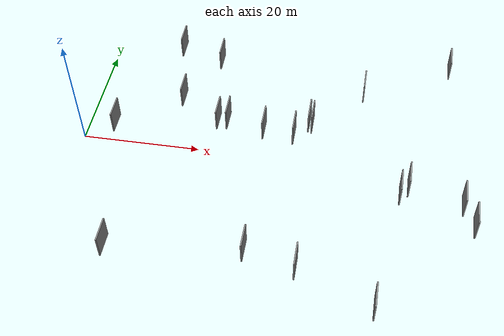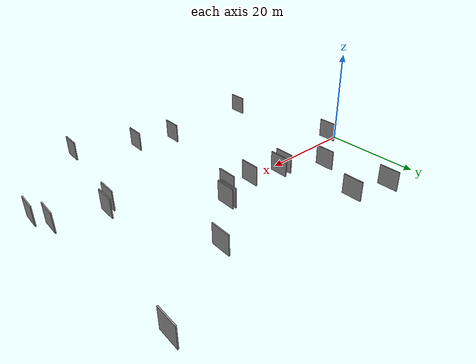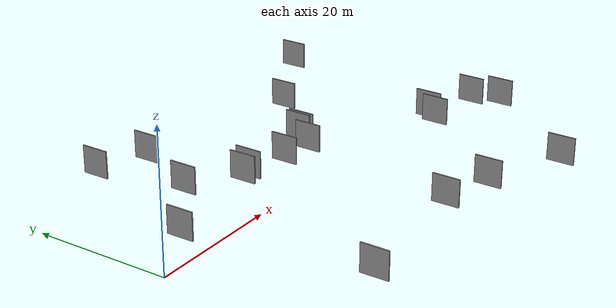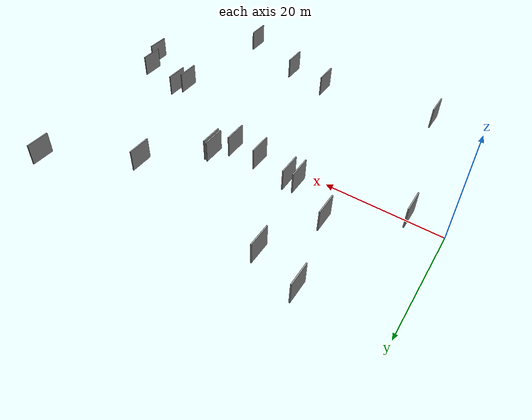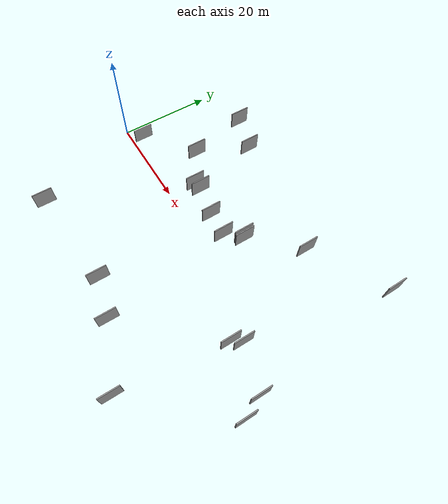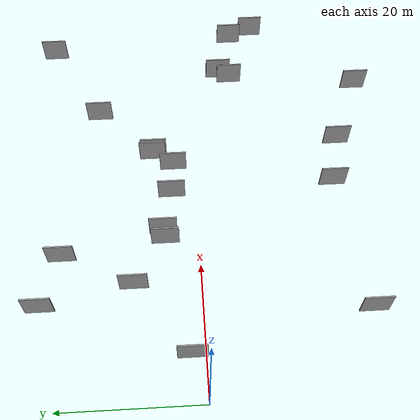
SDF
<sdf version="1.6">
 <world name="default">
  <scene>
   <sky><clouds><speed>12</speed></clouds></sky>
   <ambient>0.4 0.4 0.4 1</ambient>
   <background>0.7 0.7 0.7 1</background>
   <shadows>1</shadows>
  </scene>
  <gravity>0 0 -9.8066</gravity>
  <magnetic_field>6e-06 2.3e-05 -4.2e-05</magnetic_field>
  <physics default="0" name="default_physics" type="ode">
   <ode>
    <solver>
     <type>quick</type>
     <iters>10</iters>
     <sor>1.0</sor>
     <use_dynamic_moi_rescaling>0</use_dynamic_moi_rescaling>
    </solver>
    <constraints>
     <cfm>0</cfm>
     <erp>0.2</erp>
     <contact_max_correcting_vel>100</contact_max_correcting_vel>
     <contact_surface_layer>0.001</contact_surface_layer>
    </constraints>
   </ode>
   <max_step_size>0.004</max_step_size>
   <real_time_factor>1</real_time_factor>
   <real_time_update_rate>250</real_time_update_rate>
  </physics>
  <light name="sun" type="directional">
   <pose>0 0 10 0 0 0</pose>
   <diffuse>0.8 0.8 0.8 1</diffuse>
   <specular>0.2 0.2 0.2 1</specular>
   <attenuation>
    <range>1000</range>
    <constant>0.9</constant>
    <linear>0.01</linear>
    <quadratic>0.001</quadratic>
   </attenuation>
   <direction>-0.5 0.1 -0.9</direction>
  </light>
  <model name="grey_wall_1">
   <static>1</static>
   <pose>54.1508 -6.5935 2.5 0.000000 0.000000 1.570796</pose>
   <link name="link">
    <pose>0 0 2.00 0 0 0</pose>
    <collision name="collision"><geometry><box><size>4.00 0.2 4.00</size></box></geometry></collision>
    <visual name="visual">
     <cast_shadows>0</cast_shadows>
     <geometry><box><size>4.00 0.2 4.00</size></box></geometry>
     <material>
      <script>
       <uri>model://grey_wall/materials/scripts</uri>
       <uri>model://grey_wall/materials/textures</uri>
       <name>vrc/grey_wall</name>
      </script>
     </material>
    </visual>
   </link>
  </model>
  <model name="grey_wall_2">
   <static>1</static>
   <pose>35.8969 3.4555 2.5 0.000000 0.000000 1.570796</pose>
   <link name="link">
    <pose>0 0 2.00 0 0 0</pose>
    <collision name="collision"><geometry><box><size>4.00 0.2 4.00</size></box></geometry></collision>
    <visual name="visual">
     <cast_shadows>0</cast_shadows>
     <geometry><box><size>4.00 0.2 4.00</size></box></geometry>
     <material>
      <script>
       <uri>model://grey_wall/materials/scripts</uri>
       <uri>model://grey_wall/materials/textures</uri>
       <name>vrc/grey_wall</name>
      </script>
     </material>
    </visual>
   </link>
  </model>
  <model name="grey_wall_3">
   <static>1</static>
   <pose>10.6538 -22.9166 2.5 0.000000 0.000000 1.570796</pose>
   <link name="link">
    <pose>0 0 2.00 0 0 0</pose>
    <collision name="collision"><geometry><box><size>4.00 0.2 4.00</size></box></geometry></collision>
    <visual name="visual">
     <cast_shadows>0</cast_shadows>
     <geometry><box><size>4.00 0.2 4.00</size></box></geometry>
     <material>
      <script>
       <uri>model://grey_wall/materials/scripts</uri>
       <uri>model://grey_wall/materials/textures</uri>
       <name>vrc/grey_wall</name>
      </script>
     </material>
    </visual>
   </link>
  </model>
  <model name="grey_wall_4">
   <static>1</static>
   <pose>39.6951 -22.6798 2.5 0.000000 0.000000 1.570796</pose>
   <link name="link">
    <pose>0 0 2.00 0 0 0</pose>
    <collision name="collision"><geometry><box><size>4.00 0.2 4.00</size></box></geometry></collision>
    <visual name="visual">
     <cast_shadows>0</cast_shadows>
     <geometry><box><size>4.00 0.2 4.00</size></box></geometry>
     <material>
      <script>
       <uri>model://grey_wall/materials/scripts</uri>
       <uri>model://grey_wall/materials/textures</uri>
       <name>vrc/grey_wall</name>
      </script>
     </material>
    </visual>
   </link>
  </model>
  <model name="grey_wall_5">
   <static>1</static>
   <pose>12.8895 22.1530 2.5 0.000000 0.000000 1.570796</pose>
   <link name="link">
    <pose>0 0 2.00 0 0 0</pose>
    <collision name="collision"><geometry><box><size>4.00 0.2 4.00</size></box></geometry></collision>
    <visual name="visual">
     <cast_shadows>0</cast_shadows>
     <geometry><box><size>4.00 0.2 4.00</size></box></geometry>
     <material>
      <script>
       <uri>model://grey_wall/materials/scripts</uri>
       <uri>model://grey_wall/materials/textures</uri>
       <name>vrc/grey_wall</name>
      </script>
     </material>
    </visual>
   </link>
  </model>
  <model name="grey_wall_6">
   <static>1</static>
   <pose>20.5125 19.7068 2.5 0.000000 0.000000 1.570796</pose>
   <link name="link">
    <pose>0 0 2.00 0 0 0</pose>
    <collision name="collision"><geometry><box><size>4.00 0.2 4.00</size></box></geometry></collision>
    <visual name="visual">
     <cast_shadows>0</cast_shadows>
     <geometry><box><size>4.00 0.2 4.00</size></box></geometry>
     <material>
      <script>
       <uri>model://grey_wall/materials/scripts</uri>
       <uri>model://grey_wall/materials/textures</uri>
       <name>vrc/grey_wall</name>
      </script>
     </material>
    </visual>
   </link>
  </model>
  <model name="grey_wall_7">
   <static>1</static>
   <pose>5.5420 1.8438 2.5 0.000000 0.000000 1.570796</pose>
   <link name="link">
    <pose>0 0 2.00 0 0 0</pose>
    <collision name="collision"><geometry><box><size>4.00 0.2 4.00</size></box></geometry></collision>
    <visual name="visual">
     <cast_shadows>0</cast_shadows>
     <geometry><box><size>4.00 0.2 4.00</size></box></geometry>
     <material>
      <script>
       <uri>model://grey_wall/materials/scripts</uri>
       <uri>model://grey_wall/materials/textures</uri>
       <name>vrc/grey_wall</name>
      </script>
     </material>
    </visual>
   </link>
  </model>
  <model name="grey_wall_8">
   <static>1</static>
   <pose>51.6400 -27.6356 2.5 0.000000 0.000000 1.570796</pose>
   <link name="link">
    <pose>0 0 2.00 0 0 0</pose>
    <collision name="collision"><geometry><box><size>4.00 0.2 4.00</size></box></geometry></collision>
    <visual name="visual">
     <cast_shadows>0</cast_shadows>
     <geometry><box><size>4.00 0.2 4.00</size></box></geometry>
     <material>
      <script>
       <uri>model://grey_wall/materials/scripts</uri>
       <uri>model://grey_wall/materials/textures</uri>
       <name>vrc/grey_wall</name>
      </script>
     </material>
    </visual>
   </link>
  </model>
  <model name="grey_wall_9">
   <static>1</static>
   <pose>55.4228 -4.8063 2.5 0.000000 0.000000 1.570796</pose>
   <link name="link">
    <pose>0 0 2.00 0 0 0</pose>
    <collision name="collision"><geometry><box><size>4.00 0.2 4.00</size></box></geometry></collision>
    <visual name="visual">
     <cast_shadows>0</cast_shadows>
     <geometry><box><size>4.00 0.2 4.00</size></box></geometry>
     <material>
      <script>
       <uri>model://grey_wall/materials/scripts</uri>
       <uri>model://grey_wall/materials/textures</uri>
       <name>vrc/grey_wall</name>
      </script>
     </material>
    </visual>
   </link>
  </model>
  <model name="grey_wall_10">
   <static>1</static>
   <pose>15.7157 9.4574 2.5 0.000000 0.000000 1.570796</pose>
   <link name="link">
    <pose>0 0 2.00 0 0 0</pose>
    <collision name="collision"><geometry><box><size>4.00 0.2 4.00</size></box></geometry></collision>
    <visual name="visual">
     <cast_shadows>0</cast_shadows>
     <geometry><box><size>4.00 0.2 4.00</size></box></geometry>
     <material>
      <script>
       <uri>model://grey_wall/materials/scripts</uri>
       <uri>model://grey_wall/materials/textures</uri>
       <name>vrc/grey_wall</name>
      </script>
     </material>
    </visual>
   </link>
  </model>
  <model name="grey_wall_11">
   <static>1</static>
   <pose>65.7939 -11.2280 2.5 0.000000 0.000000 1.570796</pose>
   <link name="link">
    <pose>0 0 2.00 0 0 0</pose>
    <collision name="collision"><geometry><box><size>4.00 0.2 4.00</size></box></geometry></collision>
    <visual name="visual">
     <cast_shadows>0</cast_shadows>
     <geometry><box><size>4.00 0.2 4.00</size></box></geometry>
     <material>
      <script>
       <uri>model://grey_wall/materials/scripts</uri>
       <uri>model://grey_wall/materials/textures</uri>
       <name>vrc/grey_wall</name>
      </script>
     </material>
    </visual>
   </link>
  </model>
  <model name="grey_wall_12">
   <static>1</static>
   <pose>64.0419 -7.2971 2.5 0.000000 0.000000 1.570796</pose>
   <link name="link">
    <pose>0 0 2.00 0 0 0</pose>
    <collision name="collision"><geometry><box><size>4.00 0.2 4.00</size></box></geometry></collision>
    <visual name="visual">
     <cast_shadows>0</cast_shadows>
     <geometry><box><size>4.00 0.2 4.00</size></box></geometry>
     <material>
      <script>
       <uri>model://grey_wall/materials/scripts</uri>
       <uri>model://grey_wall/materials/textures</uri>
       <name>vrc/grey_wall</name>
      </script>
     </material>
    </visual>
   </link>
  </model>
  <model name="grey_wall_13">
   <static>1</static>
   <pose>38.6860 6.4402 2.5 0.000000 0.000000 1.570796</pose>
   <link name="link">
    <pose>0 0 2.00 0 0 0</pose>
    <collision name="collision"><geometry><box><size>4.00 0.2 4.00</size></box></geometry></collision>
    <visual name="visual">
     <cast_shadows>0</cast_shadows>
     <geometry><box><size>4.00 0.2 4.00</size></box></geometry>
     <material>
      <script>
       <uri>model://grey_wall/materials/scripts</uri>
       <uri>model://grey_wall/materials/textures</uri>
       <name>vrc/grey_wall</name>
      </script>
     </material>
    </visual>
   </link>
  </model>
  <model name="grey_wall_14">
   <static>1</static>
   <pose>31.6477 -20.7606 2.5 0.000000 0.000000 1.570796</pose>
   <link name="link">
    <pose>0 0 2.00 0 0 0</pose>
    <collision name="collision"><geometry><box><size>4.00 0.2 4.00</size></box></geometry></collision>
    <visual name="visual">
     <cast_shadows>0</cast_shadows>
     <geometry><box><size>4.00 0.2 4.00</size></box></geometry>
     <material>
      <script>
       <uri>model://grey_wall/materials/scripts</uri>
       <uri>model://grey_wall/materials/textures</uri>
       <name>vrc/grey_wall</name>
      </script>
     </material>
    </visual>
   </link>
  </model>
  <model name="grey_wall_15">
   <static>1</static>
   <pose>46.7528 15.1093 2.5 0.000000 0.000000 1.570796</pose>
   <link name="link">
    <pose>0 0 2.00 0 0 0</pose>
    <collision name="collision"><geometry><box><size>4.00 0.2 4.00</size></box></geometry></collision>
    <visual name="visual">
     <cast_shadows>0</cast_shadows>
     <geometry><box><size>4.00 0.2 4.00</size></box></geometry>
     <material>
      <script>
       <uri>model://grey_wall/materials/scripts</uri>
       <uri>model://grey_wall/materials/textures</uri>
       <name>vrc/grey_wall</name>
      </script>
     </material>
    </visual>
   </link>
  </model>
  <model name="grey_wall_16">
   <static>1</static>
   <pose>38.1207 6.6024 2.5 0.000000 0.000000 1.570796</pose>
   <link name="link">
    <pose>0 0 2.00 0 0 0</pose>
    <collision name="collision"><geometry><box><size>4.00 0.2 4.00</size></box></geometry></collision>
    <visual name="visual">
     <cast_shadows>0</cast_shadows>
     <geometry><box><size>4.00 0.2 4.00</size></box></geometry>
     <material>
      <script>
       <uri>model://grey_wall/materials/scripts</uri>
       <uri>model://grey_wall/materials/textures</uri>
       <name>vrc/grey_wall</name>
      </script>
     </material>
    </visual>
   </link>
  </model>
  <model name="grey_wall_17">
   <static>1</static>
   <pose>24.3533 5.2364 2.5 0.000000 0.000000 1.570796</pose>
   <link name="link">
    <pose>0 0 2.00 0 0 0</pose>
    <collision name="collision"><geometry><box><size>4.00 0.2 4.00</size></box></geometry></collision>
    <visual name="visual">
     <cast_shadows>0</cast_shadows>
     <geometry><box><size>4.00 0.2 4.00</size></box></geometry>
     <material>
      <script>
       <uri>model://grey_wall/materials/scripts</uri>
       <uri>model://grey_wall/materials/textures</uri>
       <name>vrc/grey_wall</name>
      </script>
     </material>
    </visual>
   </link>
  </model>
  <model name="grey_wall_18">
   <static>1</static>
   <pose>61.4782 23.3725 2.5 0.000000 0.000000 1.570796</pose>
   <link name="link">
    <pose>0 0 2.00 0 0 0</pose>
    <collision name="collision"><geometry><box><size>4.00 0.2 4.00</size></box></geometry></collision>
    <visual name="visual">
     <cast_shadows>0</cast_shadows>
     <geometry><box><size>4.00 0.2 4.00</size></box></geometry>
     <material>
      <script>
       <uri>model://grey_wall/materials/scripts</uri>
       <uri>model://grey_wall/materials/textures</uri>
       <name>vrc/grey_wall</name>
      </script>
     </material>
    </visual>
   </link>
  </model>
  <model name="grey_wall_19">
   <static>1</static>
   <pose>22.7050 4.9643 2.5 0.000000 0.000000 1.570796</pose>
   <link name="link">
    <pose>0 0 2.00 0 0 0</pose>
    <collision name="collision"><geometry><box><size>4.00 0.2 4.00</size></box></geometry></collision>
    <visual name="visual">
     <cast_shadows>0</cast_shadows>
     <geometry><box><size>4.00 0.2 4.00</size></box></geometry>
     <material>
      <script>
       <uri>model://grey_wall/materials/scripts</uri>
       <uri>model://grey_wall/materials/textures</uri>
       <name>vrc/grey_wall</name>
      </script>
     </material>
    </visual>
   </link>
  </model>
  <model name="grey_wall_20">
   <static>1</static>
   <pose>30.7352 3.8316 2.5 0.000000 0.000000 1.570796</pose>
   <link name="link">
    <pose>0 0 2.00 0 0 0</pose>
    <collision name="collision"><geometry><box><size>4.00 0.2 4.00</size></box></geometry></collision>
    <visual name="visual">
     <cast_shadows>0</cast_shadows>
     <geometry><box><size>4.00 0.2 4.00</size></box></geometry>
     <material>
      <script>
       <uri>model://grey_wall/materials/scripts</uri>
       <uri>model://grey_wall/materials/textures</uri>
       <name>vrc/grey_wall</name>
      </script>
     </material>
    </visual>
   </link>
  </model>
 </world>
</sdf>
